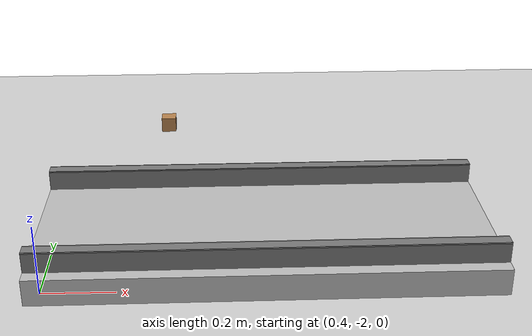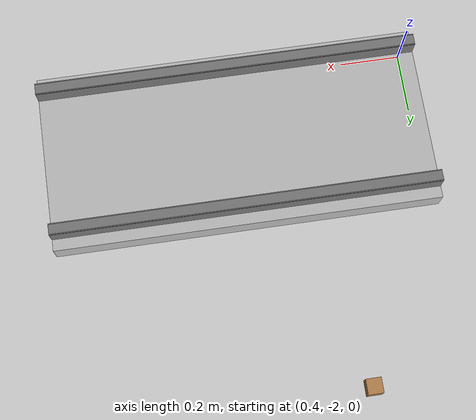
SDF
<sdf version="1.6">
 <world name="default">
  <light name="sun" type="directional">
   <pose>0 0 10 0 -0 0</pose>
   <diffuse>0.8 0.8 0.8 1</diffuse>
   <specular>0.1 0.1 0.1 1</specular>
   <attenuation>
    <range>1000</range>
    <constant>0.9</constant>
    <linear>0.01</linear>
    <quadratic>0.001</quadratic>
   </attenuation>
   <direction>-0.5 0.5 -1</direction>
  </light>
  <model name="ground_plane">
   <static>1</static>
   <link name="link">
    <collision name="collision">
     <geometry><plane><normal>0 0 1</normal><size>100 100</size></plane></geometry>
     <surface><friction><ode><mu>100</mu><mu2>50</mu2></ode></friction></surface>
    </collision>
    <visual name="visual">
     <cast_shadows>0</cast_shadows>
     <geometry><plane><normal>0 0 1</normal><size>100 100</size></plane></geometry>
     <material>
      <script><uri>file://media/materials/scripts/gazebo.material</uri><name>Gazebo/Grey</name></script>
     </material>
    </visual>
   </link>
  </model>
  <gravity>0 0 -9.8</gravity>
  <magnetic_field>6e-06 2.3e-05 -4.2e-05</magnetic_field>
  <atmosphere type="adiabatic"/>
  <physics name="default_physics" default="0" type="ode">
   <max_step_size>0.001</max_step_size>
   <real_time_factor>1</real_time_factor>
   <real_time_update_rate>1000</real_time_update_rate>
  </physics>
  <scene><ambient>0.4 0.4 0.4 1</ambient><background>0.7 0.7 0.7 1</background><shadows>1</shadows></scene>
  <spherical_coordinates>
   <surface_model>EARTH_WGS84</surface_model>
   <latitude_deg>0</latitude_deg>
   <longitude_deg>0</longitude_deg>
   <elevation>0</elevation>
   <heading_deg>0</heading_deg>
  </spherical_coordinates>
  <model name="frc2016_moat">
   <static>1</static>
   <link name="link">
    <inertial>
     <mass>10</mass>
     <pose>0 0 0.06738 0 -0 0</pose>
     <inertia><ixx>0.312195</ixx><ixy>0</ixy><ixz>0</ixz><iyy>1.35927</iyy><iyz>0</iyz><izz>1.64109</izz></inertia>
    </inertial>
    <visual name="platform">
     <pose>0 0 0.0381 0 -0 0</pose>
     <geometry><box><size>1.27 0.5969 0.0762</size></box></geometry>
    </visual>
    <collision name="platform">
     <pose>0 0 0.0381 0 -0 0</pose>
     <geometry><box><size>1.27 0.5969 0.0762</size></box></geometry>
    </collision>
    <visual name="tube1_side1">
     <pose>0 -0.25876 0.10301 0 -0 0</pose>
     <geometry><box><size>1.27 0.003175 0.0635</size></box></geometry>
     <material><ambient>0.46 0.46 0.46 1</ambient><diffuse>0.46 0.46 0.46 1</diffuse></material>
    </visual>
    <collision name="tube1_side1">
     <pose>0 -0.25876 0.10301 0 -0 0</pose>
     <geometry><box><size>1.27 0.003175 0.0635</size></box></geometry>
    </collision>
    <visual name="tube1_side2">
     <pose>0 -0.22384 0.10301 0 -0 0</pose>
     <geometry><box><size>1.27 0.003175 0.0635</size></box></geometry>
     <material><ambient>0.46 0.46 0.46 1</ambient><diffuse>0.46 0.46 0.46 1</diffuse></material>
    </visual>
    <collision name="tube1_side2">
     <pose>0 -0.22384 0.10301 0 -0 0</pose>
     <geometry><box><size>1.27 0.003175 0.0635</size></box></geometry>
    </collision>
    <visual name="tube1_top">
     <pose>0 -0.2413 0.13317 0 -0 0</pose>
     <geometry><box><size>1.27 0.0381 0.003175</size></box></geometry>
     <material><ambient>0.46 0.46 0.46 1</ambient><diffuse>0.46 0.46 0.46 1</diffuse></material>
    </visual>
    <collision name="tube1_top">
     <pose>0 -0.2413 0.13317 0 -0 0</pose>
     <geometry><box><size>1.27 0.0381 0.003175</size></box></geometry>
    </collision>
    <visual name="tube2_side1">
     <pose>0 0.22384 0.10301 0 -0 0</pose>
     <geometry><box><size>1.27 0.003175 0.0635</size></box></geometry>
     <material><ambient>0.46 0.46 0.46 1</ambient><diffuse>0.46 0.46 0.46 1</diffuse></material>
    </visual>
    <collision name="tube2_side1">
     <pose>0 0.22384 0.10301 0 -0 0</pose>
     <geometry><box><size>1.27 0.003175 0.0635</size></box></geometry>
    </collision>
    <visual name="tube2_side2">
     <pose>0 0.25876 0.10301 0 -0 0</pose>
     <geometry><box><size>1.27 0.003175 0.0635</size></box></geometry>
     <material><ambient>0.46 0.46 0.46 1</ambient><diffuse>0.46 0.46 0.46 1</diffuse></material>
    </visual>
    <collision name="tube2_side2">
     <pose>0 0.25876 0.10301 0 -0 0</pose>
     <geometry><box><size>1.27 0.003175 0.0635</size></box></geometry>
    </collision>
    <visual name="tube2_top">
     <pose>0 0.2413 0.13317 0 -0 0</pose>
     <geometry><box><size>1.27 0.0381 0.003175</size></box></geometry>
     <material><ambient>0.46 0.46 0.46 1</ambient><diffuse>0.46 0.46 0.46 1</diffuse></material>
    </visual>
    <collision name="tube2_top">
     <pose>0 0.2413 0.13317 0 -0 0</pose>
     <geometry><box><size>1.27 0.0381 0.003175</size></box></geometry>
    </collision>
   </link>
   <pose>1.00048 -1.75798 0 0 -0 0</pose>
  </model>
  <model name="wood_cube_5cm">
   <link name="link">
    <pose>0 0 0.025 0 -0 0</pose>
    <inertial>
     <mass>0.0565</mass>
     <inertia>
      <ixx>2.35417e-05</ixx>
      <ixy>0</ixy>
      <ixz>0</ixz>
      <iyy>2.35417e-05</iyy>
      <iyz>0</iyz>
      <izz>2.35417e-05</izz>
     </inertia>
    </inertial>
    <collision name="collision">
     <geometry><box><size>0.05 0.05 0.05</size></box></geometry>
     <surface>
      <contact>
       <poissons_ratio>0.347</poissons_ratio>
       <elastic_modulus>8.8e+09</elastic_modulus>
       <ode><kp>100000</kp><kd>1</kd><max_vel>1</max_vel><min_depth>0.001</min_depth></ode>
      </contact>
      <friction>
       <torsional>
        <coefficient>1</coefficient>
        <use_patch_radius>0</use_patch_radius>
        <surface_radius>0.05</surface_radius>
       </torsional>
      </friction>
     </surface>
    </collision>
    <visual name="visual">
     <geometry><box><size>0.05 0.05 0.05</size></box></geometry>
     <material>
      <script><uri>file://media/materials/scripts/gazebo.material</uri><name>Gazebo/Wood</name></script>
     </material>
    </visual>
   </link>
   <pose>0.690951 -0.895626 -0.001001 0 -0 0</pose>
  </model>
 </world>
</sdf>
